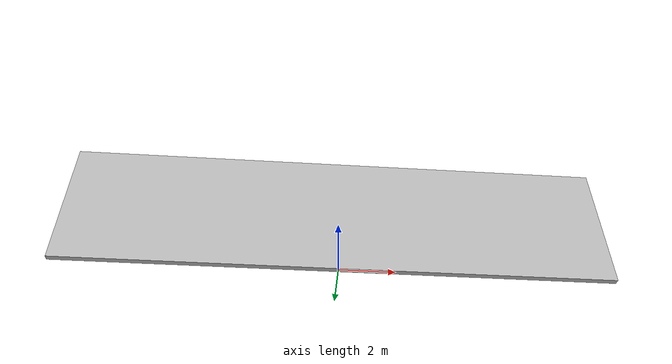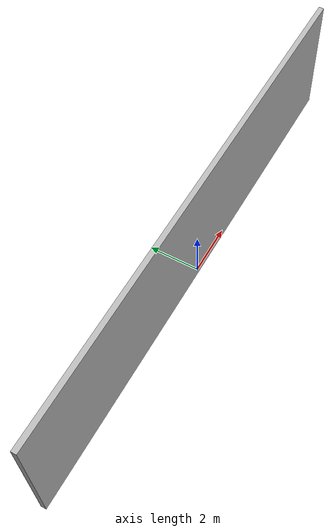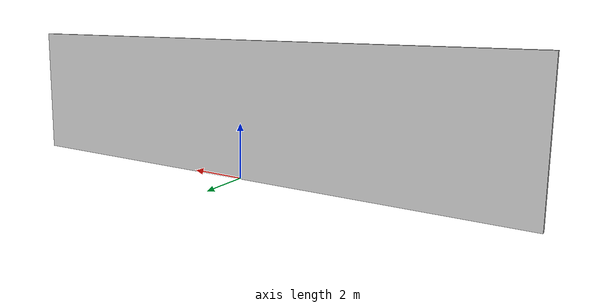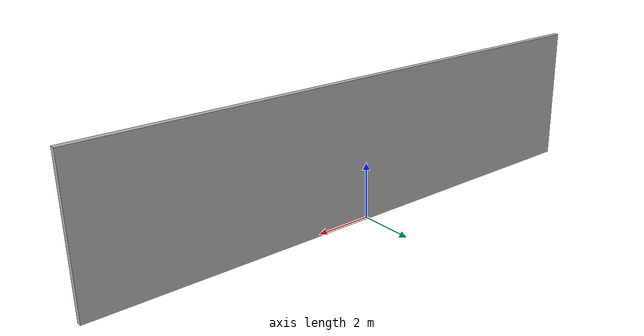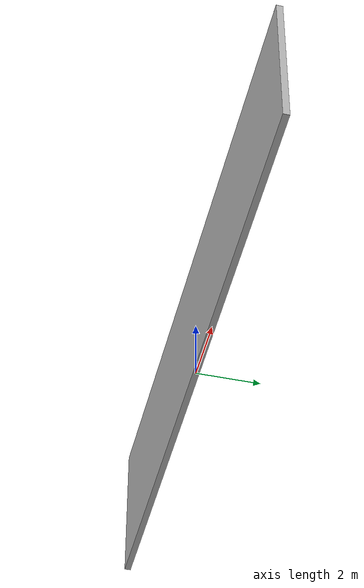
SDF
<?xml version="1.0"?>

<sdf version="1.6">
  <model name="warehouse_wall">
    <static>true</static>
    <link name="link">
      <!-- z position equals half heights -->
      <pose>0 0 2.5 0 0 0</pose>
      <collision name="collision">
        <geometry>
          <box>
            <size>20 0.2 5</size>
          </box>
        </geometry>
      </collision>
      <visual name="visual">
        <cast_shadows>false</cast_shadows>
        <geometry>
          <box>
            <size>20 0.2 5</size>
          </box>
        </geometry>
        <material>
          <script>
            <uri>model://warehouse_wall/materials/scripts</uri>
            <uri>model://warehouse_wall/materials/textures</uri>
            <name>warehouse_wall</name>
          </script>
        </material>
      </visual>
    </link>
  </model>
</sdf>
